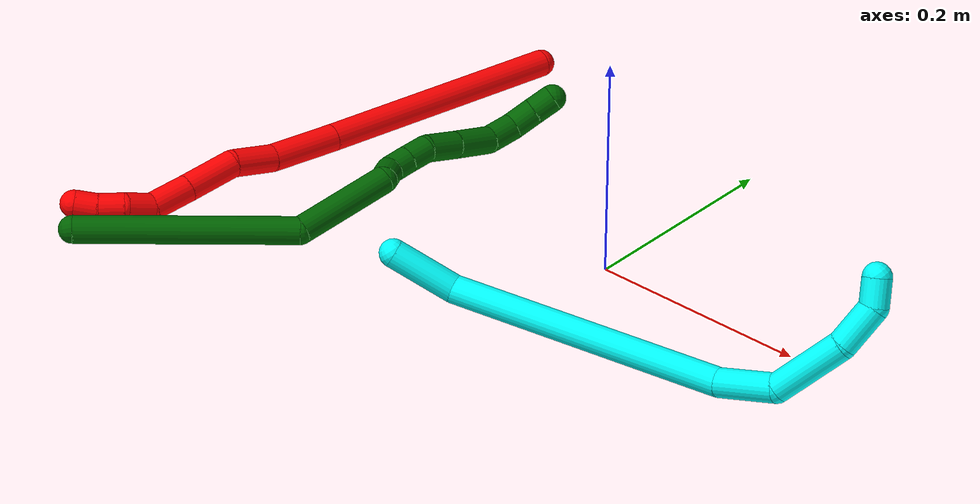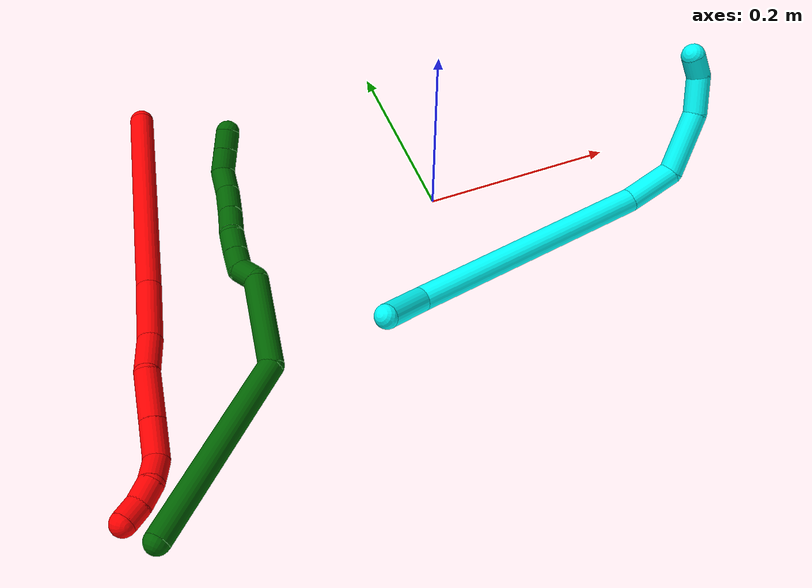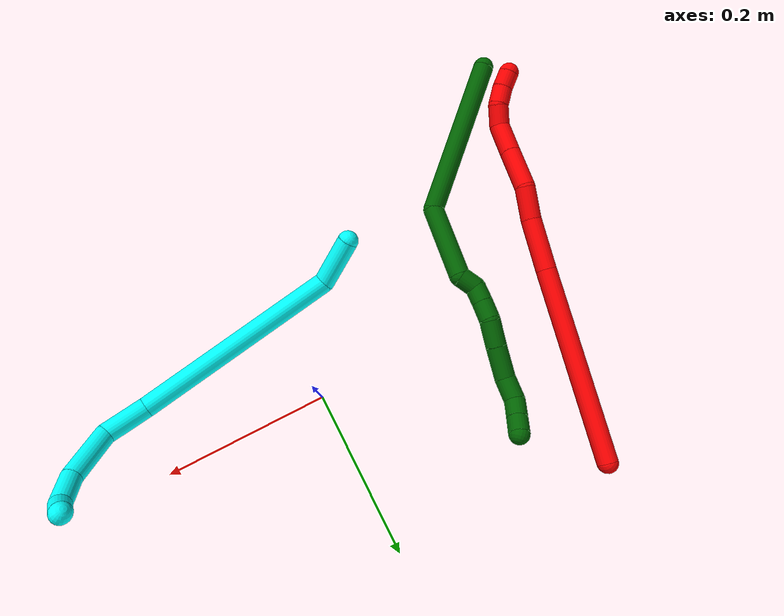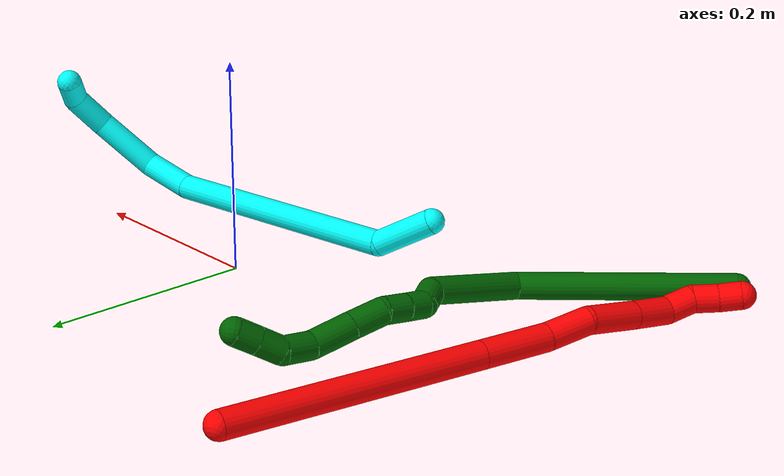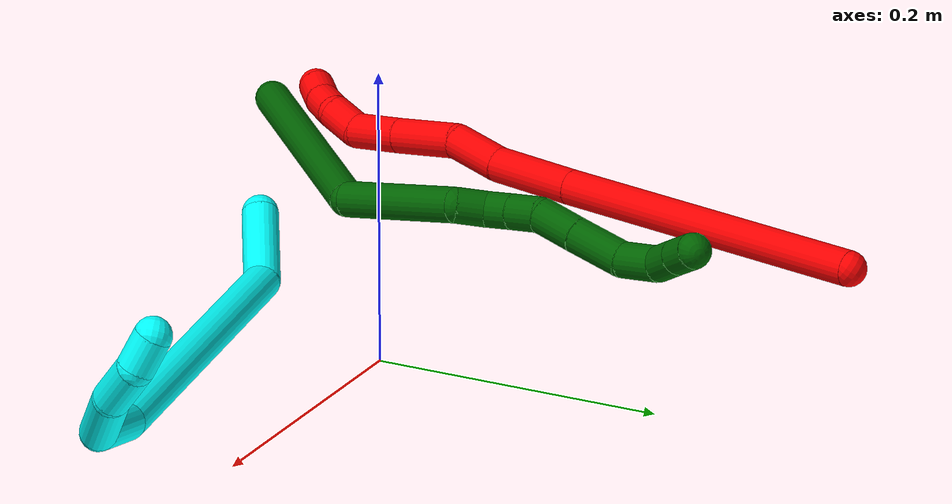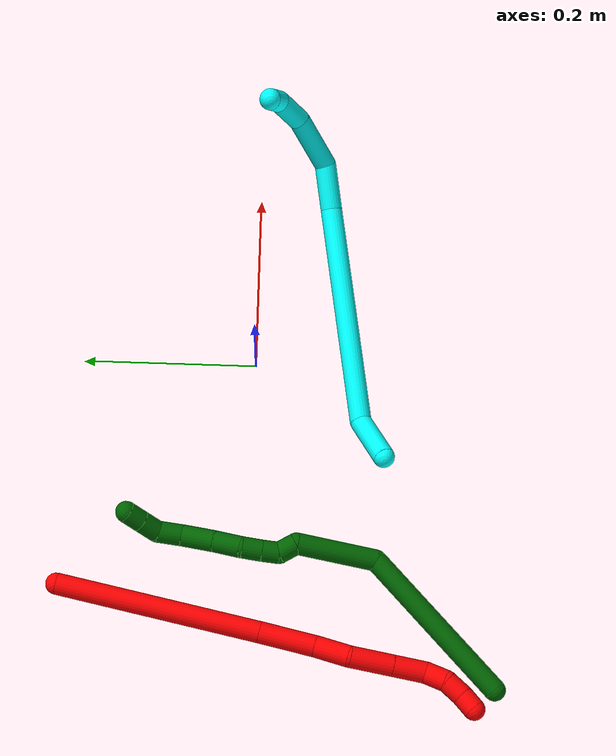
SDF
<sdf version="1.7">
 <world name="default">
  <model name="2">
   <static>0</static>
   <link name="2">
    <collision name="collision-cylinder-e_1_1_4">
     <pose>-0.014287 -0.086491 0.079296 0.828771 -0.121158 -0.053345</pose>
     <geometry><cylinder><radius>0.0125</radius><length>0.236411</length></cylinder></geometry>
     <surface>
      <friction><ode><mu>1.16</mu><mu2>1.16</mu2><slip1>0</slip1><slip2>0</slip2></ode></friction>
      <contact><ode><kp>1e+06</kp><kd>1</kd><max_vel>0</max_vel><min_depth>0.001</min_depth></ode></contact>
     </surface>
    </collision>
    <visual name="visual-cylinder-e_1_1_4">
     <pose>-0.014287 -0.086491 0.079296 0.828771 -0.121158 -0.053345</pose>
     <geometry><cylinder><radius>0.0125</radius><length>0.236411</length></cylinder></geometry>
     <material><ambient>1 0 0 1</ambient></material>
    </visual>
    <collision name="collision-cylinder-e_2_4_5">
     <pose>-0.033037 -0.196621 0.180321 0.827479 -0.138139 -0.060732</pose>
     <geometry><cylinder><radius>0.0125</radius><length>0.064837</length></cylinder></geometry>
     <surface>
      <friction><ode><mu>1.16</mu><mu2>1.16</mu2><slip1>0</slip1><slip2>0</slip2></ode></friction>
      <contact><ode><kp>1e+06</kp><kd>1</kd><max_vel>0</max_vel><min_depth>0.001</min_depth></ode></contact>
     </surface>
    </collision>
    <visual name="visual-cylinder-e_2_4_5">
     <pose>-0.033037 -0.196621 0.180321 0.827479 -0.138139 -0.060732</pose>
     <geometry><cylinder><radius>0.0125</radius><length>0.064837</length></cylinder></geometry>
     <material><ambient>1 0 0 1</ambient></material>
    </visual>
    <collision name="collision-cylinder-e_3_5_6">
     <pose>-0.042996 -0.233143 0.216737 0.720036 -0.274172 -0.103763</pose>
     <geometry><cylinder><radius>0.0125</radius><length>0.040587</length></cylinder></geometry>
     <surface>
      <friction><ode><mu>1.16</mu><mu2>1.16</mu2><slip1>0</slip1><slip2>0</slip2></ode></friction>
      <contact><ode><kp>1e+06</kp><kd>1</kd><max_vel>0</max_vel><min_depth>0.001</min_depth></ode></contact>
     </surface>
    </collision>
    <visual name="visual-cylinder-e_3_5_6">
     <pose>-0.042996 -0.233143 0.216737 0.720036 -0.274172 -0.103763</pose>
     <geometry><cylinder><radius>0.0125</radius><length>0.040587</length></cylinder></geometry>
     <material><ambient>1 0 0 1</ambient></material>
    </visual>
    <collision name="collision-cylinder-e_4_6_7">
     <pose>-0.048608 -0.266026 0.246294 0.931464 -0.004736 -0.00238</pose>
     <geometry><cylinder><radius>0.0125</radius><length>0.049846</length></cylinder></geometry>
     <surface>
      <friction><ode><mu>1.16</mu><mu2>1.16</mu2><slip1>0</slip1><slip2>0</slip2></ode></friction>
      <contact><ode><kp>1e+06</kp><kd>1</kd><max_vel>0</max_vel><min_depth>0.001</min_depth></ode></contact>
     </surface>
    </collision>
    <visual name="visual-cylinder-e_4_6_7">
     <pose>-0.048608 -0.266026 0.246294 0.931464 -0.004736 -0.00238</pose>
     <geometry><cylinder><radius>0.0125</radius><length>0.049846</length></cylinder></geometry>
     <material><ambient>1 0 0 1</ambient></material>
    </visual>
    <collision name="collision-cylinder-e_5_7_8">
     <pose>-0.049069 -0.301284 0.27288 0.916012 -0.017835 -0.008792</pose>
     <geometry><cylinder><radius>0.0125</radius><length>0.038479</length></cylinder></geometry>
     <surface>
      <friction><ode><mu>1.16</mu><mu2>1.16</mu2><slip1>0</slip1><slip2>0</slip2></ode></friction>
      <contact><ode><kp>1e+06</kp><kd>1</kd><max_vel>0</max_vel><min_depth>0.001</min_depth></ode></contact>
     </surface>
    </collision>
    <visual name="visual-cylinder-e_5_7_8">
     <pose>-0.049069 -0.301284 0.27288 0.916012 -0.017835 -0.008792</pose>
     <geometry><cylinder><radius>0.0125</radius><length>0.038479</length></cylinder></geometry>
     <material><ambient>1 0 0 1</ambient></material>
    </visual>
    <collision name="collision-cylinder-e_6_8_9">
     <pose>-0.054671 -0.324096 0.29375 0.689818 -0.41706 -0.151755</pose>
     <geometry><cylinder><radius>0.0125</radius><length>0.025965</length></cylinder></geometry>
     <surface>
      <friction><ode><mu>1.16</mu><mu2>1.16</mu2><slip1>0</slip1><slip2>0</slip2></ode></friction>
      <contact><ode><kp>1e+06</kp><kd>1</kd><max_vel>0</max_vel><min_depth>0.001</min_depth></ode></contact>
     </surface>
    </collision>
    <visual name="visual-cylinder-e_6_8_9">
     <pose>-0.054671 -0.324096 0.29375 0.689818 -0.41706 -0.151755</pose>
     <geometry><cylinder><radius>0.0125</radius><length>0.025965</length></cylinder></geometry>
     <material><ambient>1 0 0 1</ambient></material>
    </visual>
    <collision name="collision-cylinder-e_7_9_10">
     <pose>-0.066069 -0.340493 0.307223 1.11663 -0.557724 -0.353934</pose>
     <geometry><cylinder><radius>0.0125</radius><length>0.023197</length></cylinder></geometry>
     <surface>
      <friction><ode><mu>1.16</mu><mu2>1.16</mu2><slip1>0</slip1><slip2>0</slip2></ode></friction>
      <contact><ode><kp>1e+06</kp><kd>1</kd><max_vel>0</max_vel><min_depth>0.001</min_depth></ode></contact>
     </surface>
    </collision>
    <visual name="visual-cylinder-e_7_9_10">
     <pose>-0.066069 -0.340493 0.307223 1.11663 -0.557724 -0.353934</pose>
     <geometry><cylinder><radius>0.0125</radius><length>0.023197</length></cylinder></geometry>
     <material><ambient>1 0 0 1</ambient></material>
    </visual>
    <collision name="collision-cylinder-e_8_10_2">
     <pose>-0.079262 -0.356044 0.315022 1.09206 -0.751013 -0.470231</pose>
     <geometry><cylinder><radius>0.0125</radius><length>0.020678</length></cylinder></geometry>
     <surface>
      <friction><ode><mu>1.16</mu><mu2>1.16</mu2><slip1>0</slip1><slip2>0</slip2></ode></friction>
      <contact><ode><kp>1e+06</kp><kd>1</kd><max_vel>0</max_vel><min_depth>0.001</min_depth></ode></contact>
     </surface>
    </collision>
    <visual name="visual-cylinder-e_8_10_2">
     <pose>-0.079262 -0.356044 0.315022 1.09206 -0.751013 -0.470231</pose>
     <geometry><cylinder><radius>0.0125</radius><length>0.020678</length></cylinder></geometry>
     <material><ambient>1 0 0 1</ambient></material>
    </visual>
    <collision name="collision-sphere-2">
     <pose>-0.086317 -0.362752 0.318504 0 -0 0</pose>
     <geometry><sphere><radius>0.0125</radius></sphere></geometry>
     <surface>
      <friction><ode><mu>1.16</mu><mu2>1.16</mu2><slip1>0</slip1><slip2>0</slip2></ode></friction>
      <contact><ode><kp>1e+06</kp><kd>1</kd><max_vel>0</max_vel><min_depth>0.001</min_depth></ode></contact>
     </surface>
    </collision>
    <visual name="visual-sphere-2">
     <pose>-0.086317 -0.362752 0.318504 0 -0 0</pose>
     <geometry><sphere><radius>0.0125</radius></sphere></geometry>
     <material><ambient>1 0 0 1</ambient></material>
    </visual>
    <collision name="collision-sphere-10">
     <pose>-0.072207 -0.349337 0.311541 0 -0 0</pose>
     <geometry><sphere><radius>0.0125</radius></sphere></geometry>
     <surface>
      <friction><ode><mu>1.16</mu><mu2>1.16</mu2><slip1>0</slip1><slip2>0</slip2></ode></friction>
      <contact><ode><kp>1e+06</kp><kd>1</kd><max_vel>0</max_vel><min_depth>0.001</min_depth></ode></contact>
     </surface>
    </collision>
    <visual name="visual-sphere-10">
     <pose>-0.072207 -0.349337 0.311541 0 -0 0</pose>
     <geometry><sphere><radius>0.0125</radius></sphere></geometry>
     <material><ambient>1 0 0 1</ambient></material>
    </visual>
    <collision name="collision-sphere-9">
     <pose>-0.05993 -0.33165 0.302906 0 -0 0</pose>
     <geometry><sphere><radius>0.0125</radius></sphere></geometry>
     <surface>
      <friction><ode><mu>1.16</mu><mu2>1.16</mu2><slip1>0</slip1><slip2>0</slip2></ode></friction>
      <contact><ode><kp>1e+06</kp><kd>1</kd><max_vel>0</max_vel><min_depth>0.001</min_depth></ode></contact>
     </surface>
    </collision>
    <visual name="visual-sphere-9">
     <pose>-0.05993 -0.33165 0.302906 0 -0 0</pose>
     <geometry><sphere><radius>0.0125</radius></sphere></geometry>
     <material><ambient>1 0 0 1</ambient></material>
    </visual>
    <collision name="collision-sphere-4">
     <pose>-0.028573 -0.172981 0.158591 0 -0 0</pose>
     <geometry><sphere><radius>0.0125</radius></sphere></geometry>
     <surface>
      <friction><ode><mu>1.16</mu><mu2>1.16</mu2><slip1>0</slip1><slip2>0</slip2></ode></friction>
      <contact><ode><kp>1e+06</kp><kd>1</kd><max_vel>0</max_vel><min_depth>0.001</min_depth></ode></contact>
     </surface>
    </collision>
    <visual name="visual-sphere-4">
     <pose>-0.028573 -0.172981 0.158591 0 -0 0</pose>
     <geometry><sphere><radius>0.0125</radius></sphere></geometry>
     <material><ambient>1 0 0 1</ambient></material>
    </visual>
    <collision name="collision-sphere-1">
     <geometry><sphere><radius>0.0125</radius></sphere></geometry>
     <surface>
      <friction><ode><mu>1.16</mu><mu2>1.16</mu2><slip1>0</slip1><slip2>0</slip2></ode></friction>
      <contact><ode><kp>1e+06</kp><kd>1</kd><max_vel>0</max_vel><min_depth>0.001</min_depth></ode></contact>
     </surface>
    </collision>
    <visual name="visual-sphere-1">
     <geometry><sphere><radius>0.0125</radius></sphere></geometry>
     <material><ambient>1 0 0 1</ambient></material>
    </visual>
    <collision name="collision-sphere-8">
     <pose>-0.049412 -0.316543 0.284594 0 -0 0</pose>
     <geometry><sphere><radius>0.0125</radius></sphere></geometry>
     <surface>
      <friction><ode><mu>1.16</mu><mu2>1.16</mu2><slip1>0</slip1><slip2>0</slip2></ode></friction>
      <contact><ode><kp>1e+06</kp><kd>1</kd><max_vel>0</max_vel><min_depth>0.001</min_depth></ode></contact>
     </surface>
    </collision>
    <visual name="visual-sphere-8">
     <pose>-0.049412 -0.316543 0.284594 0 -0 0</pose>
     <geometry><sphere><radius>0.0125</radius></sphere></geometry>
     <material><ambient>1 0 0 1</ambient></material>
    </visual>
    <collision name="collision-sphere-5">
     <pose>-0.037501 -0.220261 0.202051 0 -0 0</pose>
     <geometry><sphere><radius>0.0125</radius></sphere></geometry>
     <surface>
      <friction><ode><mu>1.16</mu><mu2>1.16</mu2><slip1>0</slip1><slip2>0</slip2></ode></friction>
      <contact><ode><kp>1e+06</kp><kd>1</kd><max_vel>0</max_vel><min_depth>0.001</min_depth></ode></contact>
     </surface>
    </collision>
    <visual name="visual-sphere-5">
     <pose>-0.037501 -0.220261 0.202051 0 -0 0</pose>
     <geometry><sphere><radius>0.0125</radius></sphere></geometry>
     <material><ambient>1 0 0 1</ambient></material>
    </visual>
    <collision name="collision-sphere-6">
     <pose>-0.04849 -0.246025 0.231424 0 -0 0</pose>
     <geometry><sphere><radius>0.0125</radius></sphere></geometry>
     <surface>
      <friction><ode><mu>1.16</mu><mu2>1.16</mu2><slip1>0</slip1><slip2>0</slip2></ode></friction>
      <contact><ode><kp>1e+06</kp><kd>1</kd><max_vel>0</max_vel><min_depth>0.001</min_depth></ode></contact>
     </surface>
    </collision>
    <visual name="visual-sphere-6">
     <pose>-0.04849 -0.246025 0.231424 0 -0 0</pose>
     <geometry><sphere><radius>0.0125</radius></sphere></geometry>
     <material><ambient>1 0 0 1</ambient></material>
    </visual>
    <collision name="collision-sphere-7">
     <pose>-0.048726 -0.286026 0.261165 0 -0 0</pose>
     <geometry><sphere><radius>0.0125</radius></sphere></geometry>
     <surface>
      <friction><ode><mu>1.16</mu><mu2>1.16</mu2><slip1>0</slip1><slip2>0</slip2></ode></friction>
      <contact><ode><kp>1e+06</kp><kd>1</kd><max_vel>0</max_vel><min_depth>0.001</min_depth></ode></contact>
     </surface>
    </collision>
    <visual name="visual-sphere-7">
     <pose>-0.048726 -0.286026 0.261165 0 -0 0</pose>
     <geometry><sphere><radius>0.0125</radius></sphere></geometry>
     <material><ambient>1 0 0 1</ambient></material>
    </visual>
    <inertial>
     <pose>-0.032334 -0.182375 0.166559 0 -0 0</pose>
     <mass>0.5</mass>
     <inertia>
      <ixx>0.001086</ixx>
      <ixy>0</ixy>
      <ixz>0</ixz>
      <iyy>0.000702</iyy>
      <iyz>0</iyz>
      <izz>0.001022</izz>
     </inertia>
    </inertial>
   </link>
   <pose>-0.262022 0.21742 0.012309 0.810069 0.576184 -0.06406</pose>
  </model>
  <model name="3">
   <static>0</static>
   <link name="3">
    <collision name="collision-cylinder-e_1_1_4">
     <pose>0.011598 0.005868 -0.026948 -2.9272 0.39806 -2.16141</pose>
     <geometry><cylinder><radius>0.0125</radius><length>0.059838</length></cylinder></geometry>
     <surface>
      <friction><ode><mu>1.16</mu><mu2>1.16</mu2><slip1>0</slip1><slip2>0</slip2></ode></friction>
      <contact><ode><kp>1e+06</kp><kd>1</kd><max_vel>0</max_vel><min_depth>0.001</min_depth></ode></contact>
     </surface>
    </collision>
    <visual name="visual-cylinder-e_1_1_4">
     <pose>0.011598 0.005868 -0.026948 -2.9272 0.39806 -2.16141</pose>
     <geometry><cylinder><radius>0.0125</radius><length>0.059838</length></cylinder></geometry>
     <material><ambient>0.003922 1 0.996078 1</ambient></material>
    </visual>
    <collision name="collision-cylinder-e_2_4_5">
     <pose>0.117441 -0.016031 -0.136267 2.81647 0.825788 2.42513</pose>
     <geometry><cylinder><radius>0.0125</radius><length>0.256423</length></cylinder></geometry>
     <surface>
      <friction><ode><mu>1.16</mu><mu2>1.16</mu2><slip1>0</slip1><slip2>0</slip2></ode></friction>
      <contact><ode><kp>1e+06</kp><kd>1</kd><max_vel>0</max_vel><min_depth>0.001</min_depth></ode></contact>
     </surface>
    </collision>
    <visual name="visual-cylinder-e_2_4_5">
     <pose>0.117441 -0.016031 -0.136267 2.81647 0.825788 2.42513</pose>
     <geometry><cylinder><radius>0.0125</radius><length>0.256423</length></cylinder></geometry>
     <material><ambient>0.003922 1 0.996078 1</ambient></material>
    </visual>
    <collision name="collision-cylinder-e_3_5_6">
     <pose>0.235183 -0.050186 -0.230264 2.63907 1.05681 2.31309</pose>
     <geometry><cylinder><radius>0.0125</radius><length>0.053965</length></cylinder></geometry>
     <surface>
      <friction><ode><mu>1.16</mu><mu2>1.16</mu2><slip1>0</slip1><slip2>0</slip2></ode></friction>
      <contact><ode><kp>1e+06</kp><kd>1</kd><max_vel>0</max_vel><min_depth>0.001</min_depth></ode></contact>
     </surface>
    </collision>
    <visual name="visual-cylinder-e_3_5_6">
     <pose>0.235183 -0.050186 -0.230264 2.63907 1.05681 2.31309</pose>
     <geometry><cylinder><radius>0.0125</radius><length>0.053965</length></cylinder></geometry>
     <material><ambient>0.003922 1 0.996078 1</ambient></material>
    </visual>
    <collision name="collision-cylinder-e_4_6_7">
     <pose>0.291295 -0.052246 -0.239441 -1.05603 1.41944 -0.928958</pose>
     <geometry><cylinder><radius>0.0125</radius><length>0.065985</length></cylinder></geometry>
     <surface>
      <friction><ode><mu>1.16</mu><mu2>1.16</mu2><slip1>0</slip1><slip2>0</slip2></ode></friction>
      <contact><ode><kp>1e+06</kp><kd>1</kd><max_vel>0</max_vel><min_depth>0.001</min_depth></ode></contact>
     </surface>
    </collision>
    <visual name="visual-cylinder-e_4_6_7">
     <pose>0.291295 -0.052246 -0.239441 -1.05603 1.41944 -0.928958</pose>
     <geometry><cylinder><radius>0.0125</radius><length>0.065985</length></cylinder></geometry>
     <material><ambient>0.003922 1 0.996078 1</ambient></material>
    </visual>
    <collision name="collision-cylinder-e_5_7_8">
     <pose>0.341428 -0.041335 -0.230951 -0.828158 1.09926 -0.525985</pose>
     <geometry><cylinder><radius>0.0125</radius><length>0.039327</length></cylinder></geometry>
     <surface>
      <friction><ode><mu>1.16</mu><mu2>1.16</mu2><slip1>0</slip1><slip2>0</slip2></ode></friction>
      <contact><ode><kp>1e+06</kp><kd>1</kd><max_vel>0</max_vel><min_depth>0.001</min_depth></ode></contact>
     </surface>
    </collision>
    <visual name="visual-cylinder-e_5_7_8">
     <pose>0.341428 -0.041335 -0.230951 -0.828158 1.09926 -0.525985</pose>
     <geometry><cylinder><radius>0.0125</radius><length>0.039327</length></cylinder></geometry>
     <material><ambient>0.003922 1 0.996078 1</ambient></material>
    </visual>
    <collision name="collision-cylinder-e_6_8_2">
     <pose>0.365628 -0.030925 -0.21541 -0.383152 0.577984 -0.115204</pose>
     <geometry><cylinder><radius>0.0125</radius><length>0.024462</length></cylinder></geometry>
     <surface>
      <friction><ode><mu>1.16</mu><mu2>1.16</mu2><slip1>0</slip1><slip2>0</slip2></ode></friction>
      <contact><ode><kp>1e+06</kp><kd>1</kd><max_vel>0</max_vel><min_depth>0.001</min_depth></ode></contact>
     </surface>
    </collision>
    <visual name="visual-cylinder-e_6_8_2">
     <pose>0.365628 -0.030925 -0.21541 -0.383152 0.577984 -0.115204</pose>
     <geometry><cylinder><radius>0.0125</radius><length>0.024462</length></cylinder></geometry>
     <material><ambient>0.003922 1 0.996078 1</ambient></material>
    </visual>
    <collision name="collision-sphere-2">
     <pose>0.37231 -0.027096 -0.205908 0 -0 0</pose>
     <geometry><sphere><radius>0.0125</radius></sphere></geometry>
     <surface>
      <friction><ode><mu>1.16</mu><mu2>1.16</mu2><slip1>0</slip1><slip2>0</slip2></ode></friction>
      <contact><ode><kp>1e+06</kp><kd>1</kd><max_vel>0</max_vel><min_depth>0.001</min_depth></ode></contact>
     </surface>
    </collision>
    <visual name="visual-sphere-2">
     <pose>0.37231 -0.027096 -0.205908 0 -0 0</pose>
     <geometry><sphere><radius>0.0125</radius></sphere></geometry>
     <material><ambient>0.003922 1 0.996078 1</ambient></material>
    </visual>
    <collision name="collision-sphere-4">
     <pose>0.023195 0.011735 -0.053897 0 -0 0</pose>
     <geometry><sphere><radius>0.0125</radius></sphere></geometry>
     <surface>
      <friction><ode><mu>1.16</mu><mu2>1.16</mu2><slip1>0</slip1><slip2>0</slip2></ode></friction>
      <contact><ode><kp>1e+06</kp><kd>1</kd><max_vel>0</max_vel><min_depth>0.001</min_depth></ode></contact>
     </surface>
    </collision>
    <visual name="visual-sphere-4">
     <pose>0.023195 0.011735 -0.053897 0 -0 0</pose>
     <geometry><sphere><radius>0.0125</radius></sphere></geometry>
     <material><ambient>0.003922 1 0.996078 1</ambient></material>
    </visual>
    <collision name="collision-sphere-1">
     <geometry><sphere><radius>0.0125</radius></sphere></geometry>
     <surface>
      <friction><ode><mu>1.16</mu><mu2>1.16</mu2><slip1>0</slip1><slip2>0</slip2></ode></friction>
      <contact><ode><kp>1e+06</kp><kd>1</kd><max_vel>0</max_vel><min_depth>0.001</min_depth></ode></contact>
     </surface>
    </collision>
    <visual name="visual-sphere-1">
     <geometry><sphere><radius>0.0125</radius></sphere></geometry>
     <material><ambient>0.003922 1 0.996078 1</ambient></material>
    </visual>
    <collision name="collision-sphere-8">
     <pose>0.358946 -0.034755 -0.224911 0 -0 0</pose>
     <geometry><sphere><radius>0.0125</radius></sphere></geometry>
     <surface>
      <friction><ode><mu>1.16</mu><mu2>1.16</mu2><slip1>0</slip1><slip2>0</slip2></ode></friction>
      <contact><ode><kp>1e+06</kp><kd>1</kd><max_vel>0</max_vel><min_depth>0.001</min_depth></ode></contact>
     </surface>
    </collision>
    <visual name="visual-sphere-8">
     <pose>0.358946 -0.034755 -0.224911 0 -0 0</pose>
     <geometry><sphere><radius>0.0125</radius></sphere></geometry>
     <material><ambient>0.003922 1 0.996078 1</ambient></material>
    </visual>
    <collision name="collision-sphere-5">
     <pose>0.211687 -0.043797 -0.218638 0 -0 0</pose>
     <geometry><sphere><radius>0.0125</radius></sphere></geometry>
     <surface>
      <friction><ode><mu>1.16</mu><mu2>1.16</mu2><slip1>0</slip1><slip2>0</slip2></ode></friction>
      <contact><ode><kp>1e+06</kp><kd>1</kd><max_vel>0</max_vel><min_depth>0.001</min_depth></ode></contact>
     </surface>
    </collision>
    <visual name="visual-sphere-5">
     <pose>0.211687 -0.043797 -0.218638 0 -0 0</pose>
     <geometry><sphere><radius>0.0125</radius></sphere></geometry>
     <material><ambient>0.003922 1 0.996078 1</ambient></material>
    </visual>
    <collision name="collision-sphere-6">
     <pose>0.258679 -0.056575 -0.24189 0 -0 0</pose>
     <geometry><sphere><radius>0.0125</radius></sphere></geometry>
     <surface>
      <friction><ode><mu>1.16</mu><mu2>1.16</mu2><slip1>0</slip1><slip2>0</slip2></ode></friction>
      <contact><ode><kp>1e+06</kp><kd>1</kd><max_vel>0</max_vel><min_depth>0.001</min_depth></ode></contact>
     </surface>
    </collision>
    <visual name="visual-sphere-6">
     <pose>0.258679 -0.056575 -0.24189 0 -0 0</pose>
     <geometry><sphere><radius>0.0125</radius></sphere></geometry>
     <material><ambient>0.003922 1 0.996078 1</ambient></material>
    </visual>
    <collision name="collision-sphere-7">
     <pose>0.32391 -0.047916 -0.236992 0 -0 0</pose>
     <geometry><sphere><radius>0.0125</radius></sphere></geometry>
     <surface>
      <friction><ode><mu>1.16</mu><mu2>1.16</mu2><slip1>0</slip1><slip2>0</slip2></ode></friction>
      <contact><ode><kp>1e+06</kp><kd>1</kd><max_vel>0</max_vel><min_depth>0.001</min_depth></ode></contact>
     </surface>
    </collision>
    <visual name="visual-sphere-7">
     <pose>0.32391 -0.047916 -0.236992 0 -0 0</pose>
     <geometry><sphere><radius>0.0125</radius></sphere></geometry>
     <material><ambient>0.003922 1 0.996078 1</ambient></material>
    </visual>
    <inertial>
     <pose>0.170185 -0.024595 -0.158265 0 -0 0</pose>
     <mass>0.5</mass>
     <inertia>
      <ixx>-8.8e-05</ixx>
      <ixy>0</ixy>
      <ixz>0</ixz>
      <iyy>0.001903</iyy>
      <iyz>0</iyz>
      <izz>-0.000811</izz>
     </inertia>
    </inertial>
   </link>
   <pose>-0.109185 -0.148808 0.040366 -0.205011 -0.671614 0.508326</pose>
  </model>
  <model name="6">
   <static>0</static>
   <link name="6">
    <collision name="collision-cylinder-e_1_1_4">
     <pose>-0.017088 0.001208 -0.096732 -3.1291 -0.174835 2.99932</pose>
     <geometry><cylinder><radius>0.0125</radius><length>0.196475</length></cylinder></geometry>
     <surface>
      <friction><ode><mu>1.16</mu><mu2>1.16</mu2><slip1>0</slip1><slip2>0</slip2></ode></friction>
      <contact><ode><kp>1e+06</kp><kd>1</kd><max_vel>0</max_vel><min_depth>0.001</min_depth></ode></contact>
     </surface>
    </collision>
    <visual name="visual-cylinder-e_1_1_4">
     <pose>-0.017088 0.001208 -0.096732 -3.1291 -0.174835 2.99932</pose>
     <geometry><cylinder><radius>0.0125</radius><length>0.196475</length></cylinder></geometry>
     <material><ambient>0 0.392157 0.003922 1</ambient></material>
    </visual>
    <collision name="collision-cylinder-e_2_4_5">
     <pose>-0.022831 0.026129 -0.231981 -2.58975 0.245748 -0.822573</pose>
     <geometry><cylinder><radius>0.0125</radius><length>0.093264</length></cylinder></geometry>
     <surface>
      <friction><ode><mu>1.16</mu><mu2>1.16</mu2><slip1>0</slip1><slip2>0</slip2></ode></friction>
      <contact><ode><kp>1e+06</kp><kd>1</kd><max_vel>0</max_vel><min_depth>0.001</min_depth></ode></contact>
     </surface>
    </collision>
    <visual name="visual-cylinder-e_2_4_5">
     <pose>-0.022831 0.026129 -0.231981 -2.58975 0.245748 -0.822573</pose>
     <geometry><cylinder><radius>0.0125</radius><length>0.093264</length></cylinder></geometry>
     <material><ambient>0 0.392157 0.003922 1</ambient></material>
    </visual>
    <collision name="collision-cylinder-e_3_5_6">
     <pose>-0.009913 0.06066 -0.273535 -1.84447 0.139168 -0.183394</pose>
     <geometry><cylinder><radius>0.0125</radius><length>0.022692</length></cylinder></geometry>
     <surface>
      <friction><ode><mu>1.16</mu><mu2>1.16</mu2><slip1>0</slip1><slip2>0</slip2></ode></friction>
      <contact><ode><kp>1e+06</kp><kd>1</kd><max_vel>0</max_vel><min_depth>0.001</min_depth></ode></contact>
     </surface>
    </collision>
    <visual name="visual-cylinder-e_3_5_6">
     <pose>-0.009913 0.06066 -0.273535 -1.84447 0.139168 -0.183394</pose>
     <geometry><cylinder><radius>0.0125</radius><length>0.022692</length></cylinder></geometry>
     <material><ambient>0 0.392157 0.003922 1</ambient></material>
    </visual>
    <collision name="collision-cylinder-e_4_6_7">
     <pose>-0.00617 0.077355 -0.284538 -2.50601 0.215651 -0.635817</pose>
     <geometry><cylinder><radius>0.0125</radius><length>0.020269</length></cylinder></geometry>
     <surface>
      <friction><ode><mu>1.16</mu><mu2>1.16</mu2><slip1>0</slip1><slip2>0</slip2></ode></friction>
      <contact><ode><kp>1e+06</kp><kd>1</kd><max_vel>0</max_vel><min_depth>0.001</min_depth></ode></contact>
     </surface>
    </collision>
    <visual name="visual-cylinder-e_4_6_7">
     <pose>-0.00617 0.077355 -0.284538 -2.50601 0.215651 -0.635817</pose>
     <geometry><cylinder><radius>0.0125</radius><length>0.020269</length></cylinder></geometry>
     <material><ambient>0 0.392157 0.003922 1</ambient></material>
    </visual>
    <collision name="collision-cylinder-e_5_7_8">
     <pose>-0.001708 0.089619 -0.301724 -2.53574 0.201738 -0.626355</pose>
     <geometry><cylinder><radius>0.0125</radius><length>0.022895</length></cylinder></geometry>
     <surface>
      <friction><ode><mu>1.16</mu><mu2>1.16</mu2><slip1>0</slip1><slip2>0</slip2></ode></friction>
      <contact><ode><kp>1e+06</kp><kd>1</kd><max_vel>0</max_vel><min_depth>0.001</min_depth></ode></contact>
     </surface>
    </collision>
    <visual name="visual-cylinder-e_5_7_8">
     <pose>-0.001708 0.089619 -0.301724 -2.53574 0.201738 -0.626355</pose>
     <geometry><cylinder><radius>0.0125</radius><length>0.022895</length></cylinder></geometry>
     <material><ambient>0 0.392157 0.003922 1</ambient></material>
    </visual>
    <collision name="collision-cylinder-e_6_8_9">
     <pose>-0.001721 0.105445 -0.323614 -2.50132 -0.145012 0.431339</pose>
     <geometry><cylinder><radius>0.0125</radius><length>0.031935</length></cylinder></geometry>
     <surface>
      <friction><ode><mu>1.16</mu><mu2>1.16</mu2><slip1>0</slip1><slip2>0</slip2></ode></friction>
      <contact><ode><kp>1e+06</kp><kd>1</kd><max_vel>0</max_vel><min_depth>0.001</min_depth></ode></contact>
     </surface>
    </collision>
    <visual name="visual-cylinder-e_6_8_9">
     <pose>-0.001721 0.105445 -0.323614 -2.50132 -0.145012 0.431339</pose>
     <geometry><cylinder><radius>0.0125</radius><length>0.031935</length></cylinder></geometry>
     <material><ambient>0 0.392157 0.003922 1</ambient></material>
    </visual>
    <collision name="collision-cylinder-e_7_9_10">
     <pose>-0.006653 0.126998 -0.351554 -2.4709 -0.133854 0.38001</pose>
     <geometry><cylinder><radius>0.0125</radius><length>0.039334</length></cylinder></geometry>
     <surface>
      <friction><ode><mu>1.16</mu><mu2>1.16</mu2><slip1>0</slip1><slip2>0</slip2></ode></friction>
      <contact><ode><kp>1e+06</kp><kd>1</kd><max_vel>0</max_vel><min_depth>0.001</min_depth></ode></contact>
     </surface>
    </collision>
    <visual name="visual-cylinder-e_7_9_10">
     <pose>-0.006653 0.126998 -0.351554 -2.4709 -0.133854 0.38001</pose>
     <geometry><cylinder><radius>0.0125</radius><length>0.039334</length></cylinder></geometry>
     <material><ambient>0 0.392157 0.003922 1</ambient></material>
    </visual>
    <collision name="collision-cylinder-e_8_10_11">
     <pose>-0.006562 0.14735 -0.378191 -2.5145 0.191097 -0.574801</pose>
     <geometry><cylinder><radius>0.0125</radius><length>0.028598</length></cylinder></geometry>
     <surface>
      <friction><ode><mu>1.16</mu><mu2>1.16</mu2><slip1>0</slip1><slip2>0</slip2></ode></friction>
      <contact><ode><kp>1e+06</kp><kd>1</kd><max_vel>0</max_vel><min_depth>0.001</min_depth></ode></contact>
     </surface>
    </collision>
    <visual name="visual-cylinder-e_8_10_11">
     <pose>-0.006562 0.14735 -0.378191 -2.5145 0.191097 -0.574801</pose>
     <geometry><cylinder><radius>0.0125</radius><length>0.028598</length></cylinder></geometry>
     <material><ambient>0 0.392157 0.003922 1</ambient></material>
    </visual>
    <collision name="collision-cylinder-e_9_11_12">
     <pose>0.001312 0.156789 -0.400328 -3.03055 0.444256 -2.659</pose>
     <geometry><cylinder><radius>0.0125</radius><length>0.024002</length></cylinder></geometry>
     <surface>
      <friction><ode><mu>1.16</mu><mu2>1.16</mu2><slip1>0</slip1><slip2>0</slip2></ode></friction>
      <contact><ode><kp>1e+06</kp><kd>1</kd><max_vel>0</max_vel><min_depth>0.001</min_depth></ode></contact>
     </surface>
    </collision>
    <visual name="visual-cylinder-e_9_11_12">
     <pose>0.001312 0.156789 -0.400328 -3.03055 0.444256 -2.659</pose>
     <geometry><cylinder><radius>0.0125</radius><length>0.024002</length></cylinder></geometry>
     <material><ambient>0 0.392157 0.003922 1</ambient></material>
    </visual>
    <collision name="collision-cylinder-e_10_12_2">
     <pose>0.010762 0.159055 -0.420364 -3.0272 0.431312 -2.63027</pose>
     <geometry><cylinder><radius>0.0125</radius><length>0.020536</length></cylinder></geometry>
     <surface>
      <friction><ode><mu>1.16</mu><mu2>1.16</mu2><slip1>0</slip1><slip2>0</slip2></ode></friction>
      <contact><ode><kp>1e+06</kp><kd>1</kd><max_vel>0</max_vel><min_depth>0.001</min_depth></ode></contact>
     </surface>
    </collision>
    <visual name="visual-cylinder-e_10_12_2">
     <pose>0.010762 0.159055 -0.420364 -3.0272 0.431312 -2.63027</pose>
     <geometry><cylinder><radius>0.0125</radius><length>0.020536</length></cylinder></geometry>
     <material><ambient>0 0.392157 0.003922 1</ambient></material>
    </visual>
    <collision name="collision-sphere-2">
     <pose>0.015055 0.160119 -0.42963 0 -0 0</pose>
     <geometry><sphere><radius>0.0125</radius></sphere></geometry>
     <surface>
      <friction><ode><mu>1.16</mu><mu2>1.16</mu2><slip1>0</slip1><slip2>0</slip2></ode></friction>
      <contact><ode><kp>1e+06</kp><kd>1</kd><max_vel>0</max_vel><min_depth>0.001</min_depth></ode></contact>
     </surface>
    </collision>
    <visual name="visual-sphere-2">
     <pose>0.015055 0.160119 -0.42963 0 -0 0</pose>
     <geometry><sphere><radius>0.0125</radius></sphere></geometry>
     <material><ambient>0 0.392157 0.003922 1</ambient></material>
    </visual>
    <collision name="collision-sphere-12">
     <pose>0.006469 0.15799 -0.411097 0 -0 0</pose>
     <geometry><sphere><radius>0.0125</radius></sphere></geometry>
     <surface>
      <friction><ode><mu>1.16</mu><mu2>1.16</mu2><slip1>0</slip1><slip2>0</slip2></ode></friction>
      <contact><ode><kp>1e+06</kp><kd>1</kd><max_vel>0</max_vel><min_depth>0.001</min_depth></ode></contact>
     </surface>
    </collision>
    <visual name="visual-sphere-12">
     <pose>0.006469 0.15799 -0.411097 0 -0 0</pose>
     <geometry><sphere><radius>0.0125</radius></sphere></geometry>
     <material><ambient>0 0.392157 0.003922 1</ambient></material>
    </visual>
    <collision name="collision-sphere-11">
     <pose>-0.003846 0.155588 -0.389559 0 -0 0</pose>
     <geometry><sphere><radius>0.0125</radius></sphere></geometry>
     <surface>
      <friction><ode><mu>1.16</mu><mu2>1.16</mu2><slip1>0</slip1><slip2>0</slip2></ode></friction>
      <contact><ode><kp>1e+06</kp><kd>1</kd><max_vel>0</max_vel><min_depth>0.001</min_depth></ode></contact>
     </surface>
    </collision>
    <visual name="visual-sphere-11">
     <pose>-0.003846 0.155588 -0.389559 0 -0 0</pose>
     <geometry><sphere><radius>0.0125</radius></sphere></geometry>
     <material><ambient>0 0.392157 0.003922 1</ambient></material>
    </visual>
    <collision name="collision-sphere-10">
     <pose>-0.009278 0.139112 -0.366823 0 -0 0</pose>
     <geometry><sphere><radius>0.0125</radius></sphere></geometry>
     <surface>
      <friction><ode><mu>1.16</mu><mu2>1.16</mu2><slip1>0</slip1><slip2>0</slip2></ode></friction>
      <contact><ode><kp>1e+06</kp><kd>1</kd><max_vel>0</max_vel><min_depth>0.001</min_depth></ode></contact>
     </surface>
    </collision>
    <visual name="visual-sphere-10">
     <pose>-0.009278 0.139112 -0.366823 0 -0 0</pose>
     <geometry><sphere><radius>0.0125</radius></sphere></geometry>
     <material><ambient>0 0.392157 0.003922 1</ambient></material>
    </visual>
    <collision name="collision-sphere-9">
     <pose>-0.004029 0.114884 -0.336285 0 -0 0</pose>
     <geometry><sphere><radius>0.0125</radius></sphere></geometry>
     <surface>
      <friction><ode><mu>1.16</mu><mu2>1.16</mu2><slip1>0</slip1><slip2>0</slip2></ode></friction>
      <contact><ode><kp>1e+06</kp><kd>1</kd><max_vel>0</max_vel><min_depth>0.001</min_depth></ode></contact>
     </surface>
    </collision>
    <visual name="visual-sphere-9">
     <pose>-0.004029 0.114884 -0.336285 0 -0 0</pose>
     <geometry><sphere><radius>0.0125</radius></sphere></geometry>
     <material><ambient>0 0.392157 0.003922 1</ambient></material>
    </visual>
    <collision name="collision-sphere-4">
     <pose>-0.034176 0.002417 -0.193465 0 -0 0</pose>
     <geometry><sphere><radius>0.0125</radius></sphere></geometry>
     <surface>
      <friction><ode><mu>1.16</mu><mu2>1.16</mu2><slip1>0</slip1><slip2>0</slip2></ode></friction>
      <contact><ode><kp>1e+06</kp><kd>1</kd><max_vel>0</max_vel><min_depth>0.001</min_depth></ode></contact>
     </surface>
    </collision>
    <visual name="visual-sphere-4">
     <pose>-0.034176 0.002417 -0.193465 0 -0 0</pose>
     <geometry><sphere><radius>0.0125</radius></sphere></geometry>
     <material><ambient>0 0.392157 0.003922 1</ambient></material>
    </visual>
    <collision name="collision-sphere-1">
     <geometry><sphere><radius>0.0125</radius></sphere></geometry>
     <surface>
      <friction><ode><mu>1.16</mu><mu2>1.16</mu2><slip1>0</slip1><slip2>0</slip2></ode></friction>
      <contact><ode><kp>1e+06</kp><kd>1</kd><max_vel>0</max_vel><min_depth>0.001</min_depth></ode></contact>
     </surface>
    </collision>
    <visual name="visual-sphere-1">
     <geometry><sphere><radius>0.0125</radius></sphere></geometry>
     <material><ambient>0 0.392157 0.003922 1</ambient></material>
    </visual>
    <collision name="collision-sphere-8">
     <pose>0.000586 0.096005 -0.310944 0 -0 0</pose>
     <geometry><sphere><radius>0.0125</radius></sphere></geometry>
     <surface>
      <friction><ode><mu>1.16</mu><mu2>1.16</mu2><slip1>0</slip1><slip2>0</slip2></ode></friction>
      <contact><ode><kp>1e+06</kp><kd>1</kd><max_vel>0</max_vel><min_depth>0.001</min_depth></ode></contact>
     </surface>
    </collision>
    <visual name="visual-sphere-8">
     <pose>0.000586 0.096005 -0.310944 0 -0 0</pose>
     <geometry><sphere><radius>0.0125</radius></sphere></geometry>
     <material><ambient>0 0.392157 0.003922 1</ambient></material>
    </visual>
    <collision name="collision-sphere-5">
     <pose>-0.011486 0.049842 -0.270498 0 -0 0</pose>
     <geometry><sphere><radius>0.0125</radius></sphere></geometry>
     <surface>
      <friction><ode><mu>1.16</mu><mu2>1.16</mu2><slip1>0</slip1><slip2>0</slip2></ode></friction>
      <contact><ode><kp>1e+06</kp><kd>1</kd><max_vel>0</max_vel><min_depth>0.001</min_depth></ode></contact>
     </surface>
    </collision>
    <visual name="visual-sphere-5">
     <pose>-0.011486 0.049842 -0.270498 0 -0 0</pose>
     <geometry><sphere><radius>0.0125</radius></sphere></geometry>
     <material><ambient>0 0.392157 0.003922 1</ambient></material>
    </visual>
    <collision name="collision-sphere-6">
     <pose>-0.008339 0.071478 -0.276572 0 -0 0</pose>
     <geometry><sphere><radius>0.0125</radius></sphere></geometry>
     <surface>
      <friction><ode><mu>1.16</mu><mu2>1.16</mu2><slip1>0</slip1><slip2>0</slip2></ode></friction>
      <contact><ode><kp>1e+06</kp><kd>1</kd><max_vel>0</max_vel><min_depth>0.001</min_depth></ode></contact>
     </surface>
    </collision>
    <visual name="visual-sphere-6">
     <pose>-0.008339 0.071478 -0.276572 0 -0 0</pose>
     <geometry><sphere><radius>0.0125</radius></sphere></geometry>
     <material><ambient>0 0.392157 0.003922 1</ambient></material>
    </visual>
    <collision name="collision-sphere-7">
     <pose>-0.004001 0.083232 -0.292505 0 -0 0</pose>
     <geometry><sphere><radius>0.0125</radius></sphere></geometry>
     <surface>
      <friction><ode><mu>1.16</mu><mu2>1.16</mu2><slip1>0</slip1><slip2>0</slip2></ode></friction>
      <contact><ode><kp>1e+06</kp><kd>1</kd><max_vel>0</max_vel><min_depth>0.001</min_depth></ode></contact>
     </surface>
    </collision>
    <visual name="visual-sphere-7">
     <pose>-0.004001 0.083232 -0.292505 0 -0 0</pose>
     <geometry><sphere><radius>0.0125</radius></sphere></geometry>
     <material><ambient>0 0.392157 0.003922 1</ambient></material>
    </visual>
    <inertial>
     <pose>-0.012255 0.054554 -0.225486 0 -0 0</pose>
     <mass>0.5</mass>
     <inertia><ixx>-0.000524</ixx><ixy>0</ixy><ixz>0</ixz><iyy>0.00064</iyy><iyz>0</iyz><izz>2e-06</izz></inertia>
    </inertial>
   </link>
   <pose>-0.365961 -0.279455 0.017237 -1.97432 -1.19699 2.75904</pose>
  </model>
 </world>
</sdf>
